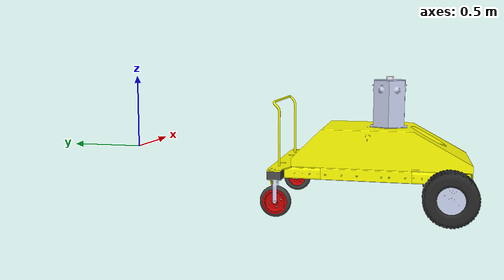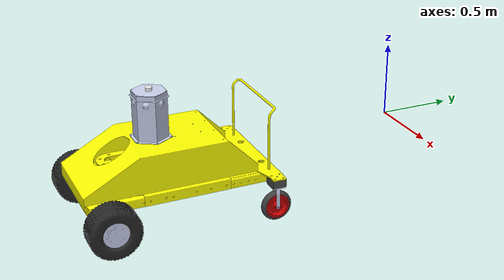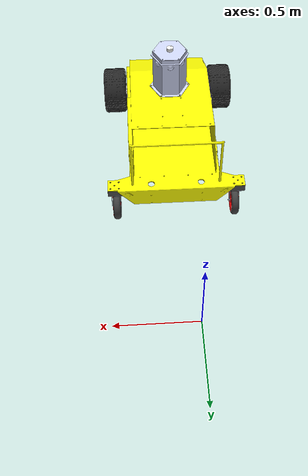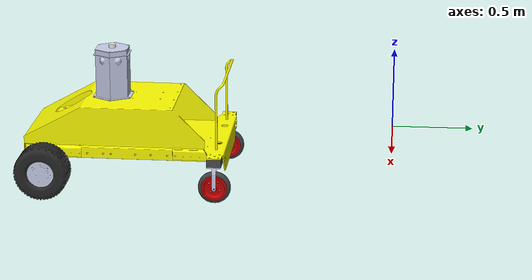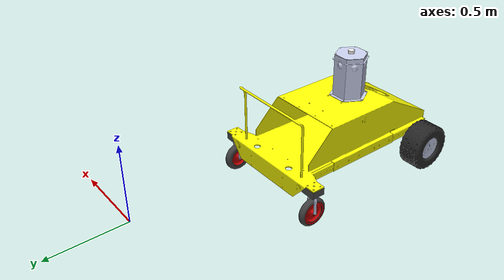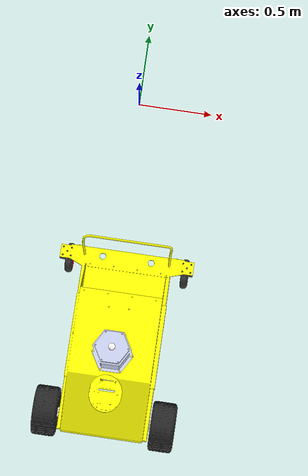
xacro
<?xml version="1.0"?>

<robot name="diff_drive"  xmlns:xacro="http://www.ros.org/wiki/xacro">
<link name="base_footprint">
    <visual>
        <origin xyz="0 0 0" rpy="0 0 0" />
        <geometry>
            <box size="0.001 0.001 0.001" />
        </geometry>
    </visual>
</link>

<joint name="base_footprint_joint" type="fixed">
    <origin xyz="0 0 0.001" rpy="0 0 0" />
    <parent link="base_footprint"/>
    <child link="base_link" />
</joint>

  <link
    name="base_link">
    <inertial>
      <origin
        xyz="0.075437 -0.081571 1.5777"
        rpy="0 0 0" />
      <mass
        value="15.9117" />
      <inertia
        ixx="0.34531"
        ixy="4.5025E-05"
        ixz="4.9852E-05"
        iyy="0.48046"
        iyz="-0.0015465"
        izz="0.15682" />
    </inertial>
    <visual>
      <origin
        xyz="0 0 0"
        rpy="0 0 0" />
      <geometry>
        <mesh
          filename="package://diff_drive/meshes/visual/base_link.STL" />
      </geometry>
      <material
        name="">
        <color
          rgba="1 1 0 1" />
      </material>
    </visual>
    <collision>
      <origin
        xyz="0 0 0"
        rpy="0 0 0" />
      <geometry>
        <mesh
          filename="package://diff_drive/meshes/visual/base_link.STL" />
      </geometry>
    </collision>
  </link>
  <link
    name="casterSupportRight">
    <inertial>
      <origin
        xyz="0.033713 0.1735 -0.0018944"
        rpy="0 0 0" />
      <mass
        value="1.461" />
      <inertia
        ixx="0.00039179"
        ixy="5.1241E-18"
        ixz="-1.9368E-07"
        iyy="0.00076151"
        iyz="-2.6793E-21"
        izz="0.00056178" />
    </inertial>
    <visual>
      <origin
        xyz="0 0 0"
        rpy="0 0 0" />
      <geometry>
        <mesh
          filename="package://diff_drive/meshes/visual/casterSupportRight.STL" />
      </geometry>
      <material
        name="">
        <color
          rgba="0.29412 0.29412 0.29412 1" />
      </material>
    </visual>
    <collision>
      <origin
        xyz="0 0 0"
        rpy="0 0 0" />
      <geometry>
        <mesh
          filename="package://diff_drive/meshes/visual/casterSupportRight.STL" />
      </geometry>
    </collision>
  </link>
  <joint
    name="caster_support_right"
    type="fixed">
    <origin
      xyz="-0.36024 -1.0733 -0.27044"
      rpy="1.5708 0 0" />
    <parent
      link="base_link" />
    <child
      link="casterSupportRight" />
    <axis
      xyz="0 0 0" />
  </joint>
  <link
    name="casterHolderRight">
    <inertial>
      <origin
        xyz="0.0382993385883101 0.117904792850938 0.00015159223218264"
        rpy="0 0 0" />
      <mass
        value="0.0833209061257809" />
      <inertia
        ixx="6.38101809119889E-05"
        ixy="-3.93281226439366E-09"
        ixz="-1.3645801878724E-07"
        iyy="8.28702382004282E-05"
        iyz="-1.11409223619846E-08"
        izz="8.0612581771544E-05" />
    </inertial>
    <visual>
      <origin
        xyz="0 0 0"
        rpy="0 0 0" />
      <geometry>
        <mesh
          filename="package://diff_drive/meshes/visual/casterHolderRight.STL" />
      </geometry>
      <material
        name="">
        <color
          rgba="0.792156862745098 0.819607843137255 0.933333333333333 1" />
      </material>
    </visual>
    <collision>
      <origin
        xyz="0 0 0"
        rpy="0 0 0" />
      <geometry>
        <mesh
          filename="package://diff_drive/meshes/visual/casterHolderRight.STL" />
      </geometry>
    </collision>
  </link>
  <joint
    name="caster_holder_right"
    type="fixed">
    <origin
      xyz="0 0 0"
      rpy="0 0 0" />
    <parent
      link="casterSupportRight" />
    <child
      link="casterHolderRight" />
    <axis
      xyz="0 0 0" />
  </joint>
  <link
    name="casterWheelRight">
    <inertial>
      <origin
        xyz="0.035994922829838 -0.00170632473366483 -0.00091408050687547"
        rpy="0 0 0" />
      <mass
        value="0.43467616518886" />
      <inertia
        ixx="0.00157044446597303"
        ixy="-2.6753199634683E-18"
        ixz="-1.37055216395096E-17"
        iyy="0.000855077607653301"
        iyz="-3.93145810217666E-20"
        izz="0.000855077607653301" />
    </inertial>
    <visual>
      <origin
        xyz="0 0 0"
        rpy="0 0 0" />
      <geometry>
        <mesh
          filename="package://diff_drive/meshes/visual/casterWheelRight.STL" />
      </geometry>
      <material
        name="">
        <color
          rgba="0.752941176470588 0 0 1" />
      </material>
    </visual>
    <collision>
      <origin
        xyz="0 0 0"
        rpy="0 0 0" />
      <geometry>
        <mesh
          filename="package://diff_drive/meshes/visual/casterWheelRight.STL" />
      </geometry>
    </collision>
  </link>
  <joint
    name="caster_wheel_right"
    type="continuous">
    <origin
      xyz="0 0 0"
      rpy="0 0 0" />
    <parent
      link="casterHolderRight" />
    <child
      link="casterWheelRight" />
    <axis
      xyz="1 0 0" />
    <limit
      effort="1"
      velocity="10" />
  </joint>
  <link
    name="casterRIghtTIre">
    <inertial>
      <origin
        xyz="0.0359640162857298 -0.00170632473566662 -0.000914080509161197"
        rpy="0 0 0" />
      <mass
        value="0.810225403265173" />
      <inertia
        ixx="0.00560952480151363"
        ixy="-6.12139598887725E-17"
        ixz="-4.8595826569797E-17"
        iyy="0.00294745006429648"
        iyz="-2.25310763969679E-19"
        izz="0.00294745006429648" />
    </inertial>
    <visual>
      <origin
        xyz="0 0 0"
        rpy="0 0 0" />
      <geometry>
        <mesh
          filename="package://diff_drive/meshes/visual/casterRIghtTIre.STL" />
      </geometry>
      <material
        name="">
        <color
          rgba="0.250980392156863 0.250980392156863 0.250980392156863 1" />
      </material>
    </visual>
    <collision>
      <origin
        xyz="0 0 0"
        rpy="0 0 0" />
      <geometry>
        <mesh
          filename="package://diff_drive/meshes/visual/casterRIghtTIre.STL" />
      </geometry>
    </collision>
  </link>
  <joint
    name="caster_right_tire"
    type="fixed">
    <origin
      xyz="0 0 0"
      rpy="0 0 0" />
    <parent
      link="casterWheelRight" />
    <child
      link="casterRIghtTIre" />
    <axis
      xyz="0 0 0" />
  </joint>
  <link
    name="casterSupportLeft">
    <inertial>
      <origin
        xyz="-0.043787 0.1735 -0.0018944"
        rpy="0 0 0" />
      <mass
        value="1.46095" />
      <inertia
        ixx="0.00039179"
        ixy="4.8867E-18"
        ixz="-1.9368E-07"
        iyy="0.00076151"
        iyz="-7.1557E-20"
        izz="0.00056178" />
    </inertial>
    <visual>
      <origin
        xyz="0 0 0"
        rpy="0 0 0" />
      <geometry>
        <mesh
          filename="package://diff_drive/meshes/visual/casterSupportLeft.STL" />
      </geometry>
      <material
        name="">
        <color
          rgba="0.29412 0.29412 0.29412 1" />
      </material>
    </visual>
    <collision>
      <origin
        xyz="0 0 0"
        rpy="0 0 0" />
      <geometry>
        <mesh
          filename="package://diff_drive/meshes/visual/casterSupportLeft.STL" />
      </geometry>
    </collision>
  </link>
  <joint
    name="caster_support_left"
    type="fixed">
    <origin
      xyz="0.51626 -1.0733 -0.27044"
      rpy="1.5708 0 0" />
    <parent
      link="base_link" />
    <child
      link="casterSupportLeft" />
    <axis
      xyz="0 0 0" />
  </joint>
  <link
    name="casterHolderLeft">
    <inertial>
      <origin
        xyz="-0.0387518671119899 0.128982529098677 0.000165835118948632"
        rpy="0 0 0" />
      <mass
        value="0.0761648437855795" />
      <inertia
        ixx="6.36826685886144E-05"
        ixy="-3.93273626686909E-09"
        ixz="-1.36457921864003E-07"
        iyy="7.86417547468484E-05"
        iyz="-1.11410722720765E-08"
        izz="7.63840982656631E-05" />
    </inertial>
    <visual>
      <origin
        xyz="0 0 0"
        rpy="0 0 0" />
      <geometry>
        <mesh
          filename="package://diff_drive/meshes/visual/casterHolderLeft.STL" />
      </geometry>
      <material
        name="">
        <color
          rgba="0.792156862745098 0.819607843137255 0.933333333333333 1" />
      </material>
    </visual>
    <collision>
      <origin
        xyz="0 0 0"
        rpy="0 0 0" />
      <geometry>
        <mesh
          filename="package://diff_drive/meshes/visual/casterHolderLeft.STL" />
      </geometry>
    </collision>
  </link>
  <joint
    name="caster_holder_left"
    type="fixed">
    <origin
      xyz="0 0 0"
      rpy="0 0 0" />
    <parent
      link="casterSupportLeft" />
    <child
      link="casterHolderLeft" />
    <axis
      xyz="0 0 0" />
  </joint>
  <link
    name="casterWheelLeft">
    <inertial>
      <origin
        xyz="-0.0415050771701638 0.00261917329426858 0.0003715776122033"
        rpy="0 0 0" />
      <mass
        value="0.434676165188859" />
      <inertia
        ixx="0.00157044446597303"
        ixy="-3.63891563040551E-18"
        ixz="-1.24071945642976E-17"
        iyy="0.0008550776076533"
        iyz="1.78859253738196E-20"
        izz="0.000855077607653301" />
    </inertial>
    <visual>
      <origin
        xyz="0 0 0"
        rpy="0 0 0" />
      <geometry>
        <mesh
          filename="package://diff_drive/meshes/visual/casterWheelLeft.STL" />
      </geometry>
      <material
        name="">
        <color
          rgba="0.752941176470588 0 0 1" />
      </material>
    </visual>
    <collision>
      <origin
        xyz="0 0 0"
        rpy="0 0 0" />
      <geometry>
        <mesh
          filename="package://diff_drive/meshes/visual/casterWheelLeft.STL" />
      </geometry>
    </collision>
  </link>
  <joint
    name="caster_wheel_left"
    type="continuous">
    <origin
      xyz="0 0 0"
      rpy="0 0 0" />
    <parent
      link="casterHolderLeft" />
    <child
      link="casterWheelLeft" />
    <axis
      xyz="1 0 0" />
    <limit
      effort="1"
      velocity="10" />
    <dynamics
      damping="1"
      friction="1" />
  </joint>
  <link
    name="casterTireLeft">
    <inertial>
      <origin
        xyz="-0.0425846574963772 0.00261917329104561 0.000371577609860951"
        rpy="0 0 0" />
      <mass
        value="0.810225403265173" />
      <inertia
        ixx="0.00560952480151363"
        ixy="-5.87359604787391E-17"
        ixz="-4.59628823694464E-17"
        iyy="0.00294745006429648"
        iyz="-8.21621958836961E-20"
        izz="0.00294745006429648" />
    </inertial>
    <visual>
      <origin
        xyz="0 0 0"
        rpy="0 0 0" />
      <geometry>
        <mesh
          filename="package://diff_drive/meshes/visual/casterTireLeft.STL" />
      </geometry>
      <material
        name="">
        <color
          rgba="0.250980392156863 0.250980392156863 0.250980392156863 1" />
      </material>
    </visual>
    <collision>
      <origin
        xyz="0 0 0"
        rpy="0 0 0" />
      <geometry>
        <mesh
          filename="package://diff_drive/meshes/visual/casterTireLeft.STL" />
      </geometry>
    </collision>
  </link>
  <joint
    name="caster_tire_left"
    type="fixed">
    <origin
      xyz="0 0 0"
      rpy="0 0 0" />
    <parent
      link="casterWheelLeft" />
    <child
      link="casterTireLeft" />
    <axis
      xyz="0 0 0" />
  </joint>
  <link
    name="chassis">
    <inertial>
      <origin
        xyz="-0.00024879 -0.11547 0.23109"
        rpy="0 0 0" />
      <mass
        value="5.2325" />
      <inertia
        ixx="0.31047"
        ixy="0.00010792"
        ixz="-0.00077258"
        iyy="0.45355"
        iyz="0.01911"
        izz="0.20521" />
    </inertial>
    <visual>
      <origin
        xyz="0 0 0"
        rpy="0 0 0" />
      <geometry>
        <mesh
          filename="package://diff_drive/meshes/visual/chassis.STL" />
      </geometry>
      <material
        name="">
               <color
          rgba="1 1 0 1" />
      </material>
    </visual>
    <collision>
      <origin
        xyz="0 0 0"
        rpy="0 0 0" />
      <geometry>
        <mesh
          filename="package://diff_drive/meshes/visual/chassis.STL" />
      </geometry>
    </collision>
  </link>
  <joint
    name="chassis_top"
    type="fixed">
    <origin
      xyz="0.0769578702021261 -1.52680535726289 0.180738869902464"
      rpy="1.5707963267949 0 0" />
    <parent
      link="base_link" />
    <child
      link="chassis" />
    <axis
      xyz="0 0 0" />
  </joint>
  <link
    name="tower">
    <inertial>
      <origin
        xyz="0.0860662317841651 0.0226377611381061 0.049997707034549"
        rpy="0 0 0" />
      <mass
        value="0.929548157217123" />
      <inertia
        ixx="0.0135570321632158"
        ixy="6.41772677423658E-05"
        ixz="1.3148174470214E-07"
        iyy="0.00860966719928799"
        iyz="2.74387282071566E-07"
        izz="0.0135241113699644" />
    </inertial>
    <visual>
      <origin
        xyz="0 0 0"
        rpy="0 0 0" />
      <geometry>
        <mesh
          filename="package://diff_drive/meshes/visual/tower.STL" />
      </geometry>
      <material
        name="">
        <color
          rgba="0.792156862745098 0.819607843137255 0.933333333333333 1" />
      </material>
    </visual>
    <collision>
      <origin
        xyz="0 0 0"
        rpy="0 0 0" />
      <geometry>
        <mesh
          filename="package://diff_drive/meshes/visual/tower.STL" />
      </geometry>
    </collision>
  </link>
  <joint
    name="tower_"
    type="fixed">
    <origin
      xyz="-0.0863800430095729 0.132355689959803 0.179401745287782"
      rpy="0 0 0" />
    <parent
      link="chassis" />
    <child
      link="tower" />
    <axis
      xyz="0 0 0" />
  </joint>
  <link
    name="towerLid">
    <inertial>
      <origin
        xyz="0.0861751451686685 0.175144310040197 0.0500028904196914"
        rpy="0 0 0" />
      <mass
        value="0.0982469759272593" />
      <inertia
        ixx="0.000283153085900981"
        ixy="5.08021982325599E-18"
        ixz="-4.47354581904874E-12"
        iyy="0.000566158891065147"
        iyz="1.08100857539373E-21"
        izz="0.000283153175628057" />
    </inertial>
    <visual>
      <origin
        xyz="0 0 0"
        rpy="0 0 0" />
      <geometry>
        <mesh
          filename="package://diff_drive/meshes/visual/towerLid.STL" />
      </geometry>
      <material
        name="">
        <color
          rgba="0.792156862745098 0.819607843137255 0.933333333333333 1" />
      </material>
    </visual>
    <collision>
      <origin
        xyz="0 0 0"
        rpy="0 0 0" />
      <geometry>
        <mesh
          filename="package://diff_drive/meshes/visual/towerLid.STL" />
      </geometry>
    </collision>
  </link>
  <joint
    name="tower_lid"
    type="fixed">
    <origin
      xyz="0 0 0"
      rpy="0 0 0" />
    <parent
      link="tower" />
    <child
      link="towerLid" />
    <axis
      xyz="0 0 0" />
  </joint>
  <link
    name="tireRIght">
    <inertial>
      <origin
        xyz="0.11009 7.5916E-06 -2.2334E-05"
        rpy="0 0 0" />
      <mass
        value="9.51472" />
      <inertia
        ixx="0.00050921"
        ixy="-3.2248E-07"
        ixz="9.4966E-07"
        iyy="0.00072702"
        iyz="-1.3419E-08"
        izz="0.00072706" />
    </inertial>
    <visual>
      <origin
        xyz="0 0 0"
        rpy="0 0 0" />
      <geometry>
        <mesh
          filename="package://diff_drive/meshes/visual/tireRIght.STL" />
      </geometry>
      <material
        name="">
        <color
          rgba="0.95686 0.95686 0.96078 1" />
      </material>
    </visual>
    <collision>
      <origin
        xyz="0 0 0"
        rpy="0 0 0" />
      <geometry>
        <mesh
          filename="package://diff_drive/meshes/visual/tireRIght.STL" />
      </geometry>
    </collision>
  </link>
  <joint
    name="tire_right"
    type="fixed">
    <origin
      xyz="-0.387860216208303 -2.14524794513276 -0.202298122418271"
      rpy="1.5707963267949 0 0" />
    <parent
      link="base_link" />
    <child
      link="tireRIght" />
    <axis
      xyz="0 0 0" />
  </joint>
  <link
    name="wheelRight">
    <inertial>
      <origin
        xyz="0.0533246151428162 -2.58176721834591E-07 1.03920091998333E-06"
        rpy="0 0 0" />
      <mass
        value="1.40669832967328" />
      <inertia
        ixx="0.00396065946094497"
        ixy="4.46642758249798E-09"
        ixz="-1.54995930328237E-08"
        iyy="0.00408955213615999"
        iyz="2.57506666522041E-07"
        izz="0.00408898253241259" />
    </inertial>
    <visual>
      <origin
        xyz="0 0 0"
        rpy="0 0 0" />
      <geometry>
        <mesh
          filename="package://diff_drive/meshes/visual/wheelRight.STL" />
      </geometry>
      <material
        name="">
        <color
          rgba="0.792156862745098 0.819607843137255 0.933333333333333 1" />
      </material>
    </visual>
    <collision>
      <origin
        xyz="0 0 0"
        rpy="0 0 0" />
      <geometry>
        <mesh
          filename="package://diff_drive/meshes/visual/wheelRight.STL" />
      </geometry>
    </collision>
  </link>
  <joint
    name="wheel_right"
    type="continuous">
    <origin
      xyz="0 0 0"
      rpy="0 0 0" />
    <parent
      link="tireRIght" />
    <child
      link="wheelRight" />
    <axis
      xyz="-1 0 0" />
    <limit
      effort="1"
      velocity="100" />
  </joint>
  <link
    name="tyreRight">
    <inertial>
      <origin
        xyz="0.0680190209858414 -1.42093599467263E-06 3.51676115917243E-06"
        rpy="0 0 0" />
      <mass
        value="2.87882308178147" />
      <inertia
        ixx="0.0580038949349999"
        ixy="-4.4580434355931E-08"
        ixz="1.06805871602393E-07"
        iyy="0.0385930978636477"
        iyz="9.63979391195808E-08"
        izz="0.0385926926227158" />
    </inertial>
    <visual>
      <origin
        xyz="0 0 0"
        rpy="0 0 0" />
      <geometry>
        <mesh
          filename="package://diff_drive/meshes/visual/tyreRight.STL" />
      </geometry>
      <material
        name="">
        <color
          rgba="0.149019607843137 0.149019607843137 0.149019607843137 1" />
      </material>
    </visual>
    <collision>
      <origin
        xyz="0 0 0"
        rpy="0 0 0" />
      <geometry>
        <mesh
          filename="package://diff_drive/meshes/visual/tyreRight.STL" />
      </geometry>
    </collision>
  </link>
  <joint
    name="tyre_right"
    type="fixed">
    <origin
      xyz="0 0 0"
      rpy="0 0 0" />
    <parent
      link="wheelRight" />
    <child
      link="tyreRight" />
    <axis
      xyz="0 0 0" />
  </joint>
  <link
    name="tireLeft">
    <inertial>
      <origin
        xyz="-0.11009 5.3134E-06 -2.3906E-05"
        rpy="0 0 0" />
      <mass
        value="9.5147" />
      <inertia
        ixx="0.00050921"
        ixy="3.0236E-07"
        ixz="-9.5626E-07"
        iyy="0.00072702"
        iyz="-1.5813E-08"
        izz="0.00072706" />
    </inertial>
    <visual>
      <origin
        xyz="0 0 0"
        rpy="0 0 0" />
      <geometry>
        <mesh
          filename="package://diff_drive/meshes/visual/tireLeft.STL" />
      </geometry>
      <material
        name="">
        <color
          rgba="0.95686 0.95686 0.96078 1" />
      </material>
    </visual>
    <collision>
      <origin
        xyz="0 0 0"
        rpy="0 0 0" />
      <geometry>
        <mesh
          filename="package://diff_drive/meshes/visual/tireLeft.STL" />
      </geometry>
    </collision>
  </link>
  <joint
    name="tire_left"
    type="fixed">
    <origin
      xyz="0.539077625848538 -2.14317773349735 -0.201666803080188"
      rpy="1.5707963267949 0 0" />
    <parent
      link="base_link" />
    <child
      link="tireLeft" />
    <axis
      xyz="0 0 0" />
  </joint>
  <link
    name="wheelLeft">
    <inertial>
      <origin
        xyz="-0.0533246151428166 -4.07197867868803E-07 9.90345227602774E-07"
        rpy="0 0 0" />
      <mass
        value="1.4066983296733" />
      <inertia
        ixx="0.00396065813349289"
        ixy="-5.57709556010084E-09"
        ixz="1.51354720128055E-08"
        iyy="0.00408960235535637"
        iyz="1.95976361170493E-07"
        izz="0.00408893082620729" />
    </inertial>
    <visual>
      <origin
        xyz="0 0 0"
        rpy="0 0 0" />
      <geometry>
        <mesh
          filename="package://diff_drive/meshes/visual/wheelLeft.STL" />
      </geometry>
      <material
        name="">
        <color
          rgba="0.792156862745098 0.819607843137255 0.933333333333333 1" />
      </material>
    </visual>
    <collision>
      <origin
        xyz="0 0 0"
        rpy="0 0 0" />
      <geometry>
        <mesh
          filename="package://diff_drive/meshes/visual/wheelLeft.STL" />
      </geometry>
    </collision>
  </link>
  <joint
    name="wheel_left"
    type="continuous">
    <origin
      xyz="0 0 0"
      rpy="0 0 0" />
    <parent
      link="tireLeft" />
    <child
      link="wheelLeft" />
    <axis
      xyz="-1 0 0" />
    <limit
      effort="1"
      velocity="10" />
  </joint>
  <link
    name="tyreLeft">
    <inertial>
      <origin
        xyz="-0.0680190209861316 -9.36993379330175E-07 3.67542028678614E-06"
        rpy="0 0 0" />
      <mass
        value="2.87882308177231" />
      <inertia
        ixx="0.0580038949352068"
        ixy="2.73071871376998E-08"
        ixz="-1.12470226518638E-07"
        iyy="0.0385930478085845"
        iyz="1.64530994084652E-07"
        izz="0.0385927426781571" />
    </inertial>
    <visual>
      <origin
        xyz="0 0 0"
        rpy="0 0 0" />
      <geometry>
        <mesh
          filename="package://diff_drive/meshes/visual/tyreLeft.STL" />
      </geometry>
      <material
        name="">
        <color
          rgba="0.149019607843137 0.149019607843137 0.149019607843137 1" />
      </material>
    </visual>
    <collision>
      <origin
        xyz="0 0 0"
        rpy="0 0 0" />
      <geometry>
        <mesh
          scale=".0010 .0010 .0010" filename="package://diff_drive/meshes/visual/tyreLeft.STL" />
      </geometry>
    </collision>
  </link>
  <joint
    name="tyre_left"
    type="fixed">
    <origin
      xyz="0 0 0"
      rpy="0 0 0" />
    <parent
      link="wheelLeft" />
    <child
      link="tyreLeft" />
    <axis
      xyz="0 0 0" />
  </joint>

      <xacro:include filename="lidar.xacro" />

 </robot>

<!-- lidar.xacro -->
<robot xmlns:xacro="http://www.ros.org/wiki/xacro" >

<sensor name="laser" type="ray">
    <pose> 0 0 0 0 0 0 </pose>
    <visualize>true</visualize>
    <update_rate>10</update_rate>
    <ray>
        ...fill in next section...
    </ray>
    <plugin name="laser_controller" filename="libgazebo_ros_ray_sensor.so">
        ...fill in next section...
    </plugin>
</sensor>

<link
    name="lidar">
    <inertial>
      <origin
        xyz="-0.0111333161227625 -0.0252415914119556 -3.87797835206261E-05"
        rpy="0 0 0" />
      <mass
        value="0.0894606610294314" />
      <inertia
        ixx="2.65294739297615E-05"
        ixy="-9.86580276384748E-06"
        ixz="-2.68777527833676E-08"
        iyy="6.33455442038402E-05"
        iyz="-3.1272049728815E-08"
        izz="6.51262949148568E-05" />
    </inertial>
    <visual>
      <origin
        xyz="0 0 0"
        rpy="0 0 0" />
      <geometry>
        <mesh
          filename="package://diff_drive/meshes/visual/lidar.STL" />
      </geometry>
      <material
        name="">
        <color
          rgba="0.95686 0.95686 0.96078 1" />
      </material>
    </visual>
    <collision>
      <origin
        xyz="0 0 0"
        rpy="0 0 0" />
      <geometry>
        <mesh
          filename="package://diff_drive/meshes/visual/lidar.STL" />
      </geometry>
    </collision>
  </link>
  <joint
    name="lidar_"
    type="fixed">
    <origin
      xyz="0.0858869441646344 0.199413939761032 0.0500927932385624"
      rpy="0 0 0" />
    <parent
      link="tower" />
    <child
      link="lidar" />
    <axis
      xyz="0 0 0" />
  </joint>

    <gazebo reference="laser_frame">
        <material>Gazebo/Black</material>

        <sensor name="laser" type="ray">
            <pose> 0 0 0 0 0 0 </pose>
            <visualize>false</visualize>
            <update_rate>10</update_rate>
            <ray>
                <scan>
                    <horizontal>
                        <samples>360</samples>
                        <min_angle>-3.14</min_angle>
                        <max_angle>3.14</max_angle>
                    </horizontal>
                </scan>
                <range>
                    <min>0.3</min>
                    <max>12</max>
                </range>
            </ray>
            <plugin name="laser_controller" filename="libgazebo_ros_ray_sensor.so">
                <ros>
                    <argument>~/out:=scan</argument>
                </ros>
                <output_type>sensor_msgs/LaserScan</output_type>
                <frame_name>laser_frame</frame_name>
            </plugin>
        </sensor>
    </gazebo>

</robot>
